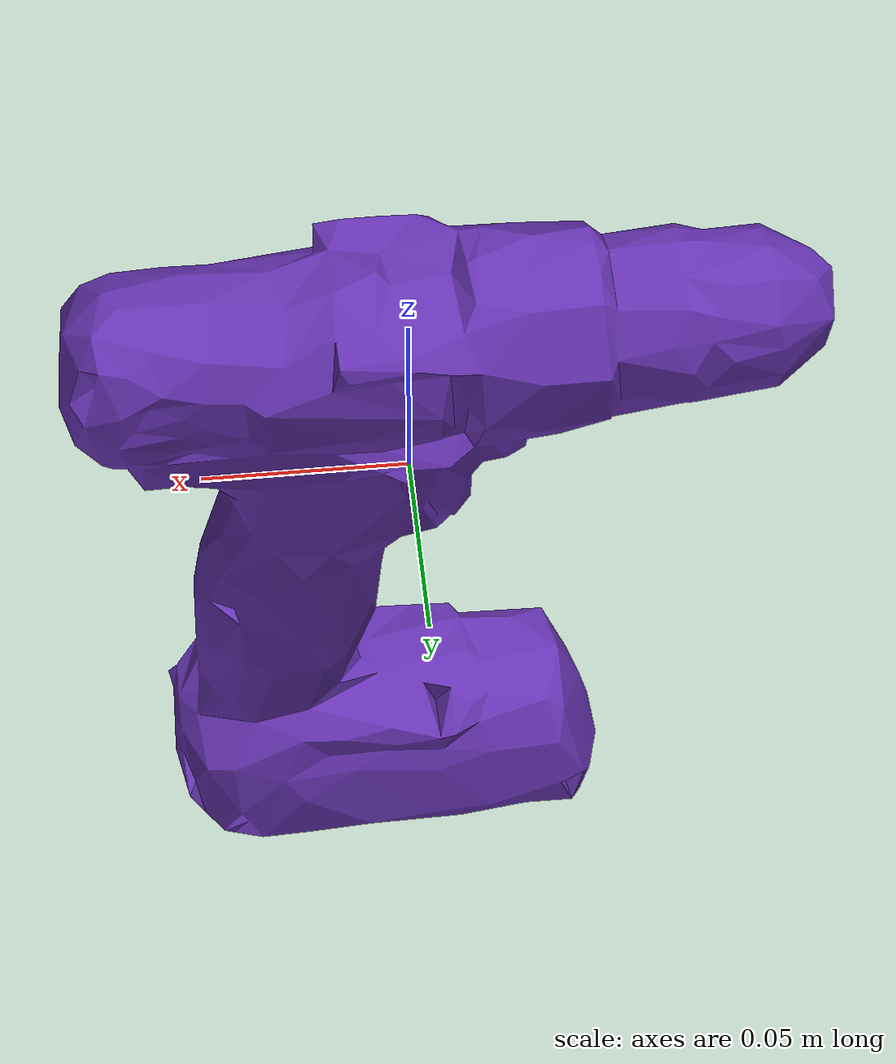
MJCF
<mujoco model="top_watertight_tiny">

  <asset>
    <mesh file="top_watertight_tiny.obj"/>
    <mesh file="top_watertight_tiny_collision_0.obj"/>
    <mesh file="top_watertight_tiny_collision_1.obj"/>
    <mesh file="top_watertight_tiny_collision_2.obj"/>
    <mesh file="top_watertight_tiny_collision_3.obj"/>
    <mesh file="top_watertight_tiny_collision_4.obj"/>
    <mesh file="top_watertight_tiny_collision_5.obj"/>
    <mesh file="top_watertight_tiny_collision_6.obj"/>
  </asset>
  <worldbody>
    <body name="top_watertight_tiny">
      <freejoint/>
      <geom solimp="0.90 0.95 0.001" solref="0.02 1.0" density="100" friction="0.95 0.4 0.3" rgba="0.4 0.2 0.7 1" mesh="top_watertight_tiny" group="2" type="mesh" contype="0" conaffinity="0"/>
      <geom solimp="0.90 0.95 0.001" solref="0.02 1.0" density="100" friction="0.95 0.4 0.3" mesh="top_watertight_tiny_collision_0" rgba="0.09978943831929665 0.96712994379594 0.4715154612618875 1" group="3" type="mesh"/>
      <geom solimp="0.90 0.95 0.001" solref="0.02 1.0" density="100" friction="0.95 0.4 0.3" mesh="top_watertight_tiny_collision_1" rgba="0.5026632228007195 0.28723815411586373 0.939076048381666 1" group="3" type="mesh"/>
      <geom solimp="0.90 0.95 0.001" solref="0.02 1.0" density="100" friction="0.95 0.4 0.3" mesh="top_watertight_tiny_collision_2" rgba="0.43761110955034144 0.7511585391965016 0.009574207543905588 1" group="3" type="mesh"/>
      <geom solimp="0.90 0.95 0.001" solref="0.02 1.0" density="100" friction="0.95 0.4 0.3" mesh="top_watertight_tiny_collision_3" rgba="0.8243994188391499 0.11953734204447619 0.6494860650273808 1" group="3" type="mesh"/>
      <geom solimp="0.90 0.95 0.001" solref="0.02 1.0" density="100" friction="0.95 0.4 0.3" mesh="top_watertight_tiny_collision_4" rgba="0.4639510375548994 0.44642275179723834 0.17829832415168068 1" group="3" type="mesh"/>
      <geom solimp="0.90 0.95 0.001" solref="0.02 1.0" density="100" friction="0.95 0.4 0.3" mesh="top_watertight_tiny_collision_5" rgba="0.6788124208674698 0.045979651797590226 0.6040964833131308 1" group="3" type="mesh"/>
      <geom solimp="0.90 0.95 0.001" solref="0.02 1.0" density="100" friction="0.95 0.4 0.3" mesh="top_watertight_tiny_collision_6" rgba="0.11787601955877258 0.9192710831191947 0.287564948440893 1" group="3" type="mesh"/>
    </body>
  </worldbody>
</mujoco>
